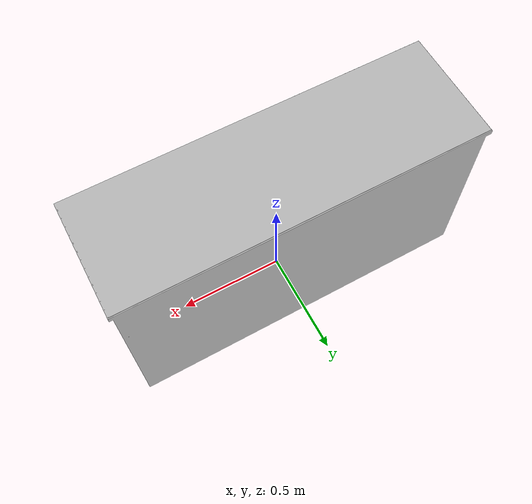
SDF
<sdf version="1.6">
	<model name="Dressers_Od32ea272d9d0_lod0">
		<link name="main_link">
			<visual name="visual_RootNode">
				<geometry>
					<mesh>
						<uri>model://Dressers_Od32ea272d9d0_lod0/meshes/visual_RootNode.dae</uri>
					</mesh>
				</geometry>
			</visual>
			<collision name="collision_RootNode_lod0_0">
				<geometry>
					<mesh>
						<uri>model://Dressers_Od32ea272d9d0_lod0/meshes/collision_RootNode_lod0_0.dae</uri>
					</mesh>
				</geometry>
			</collision>
		</link>
	</model>
</sdf>
